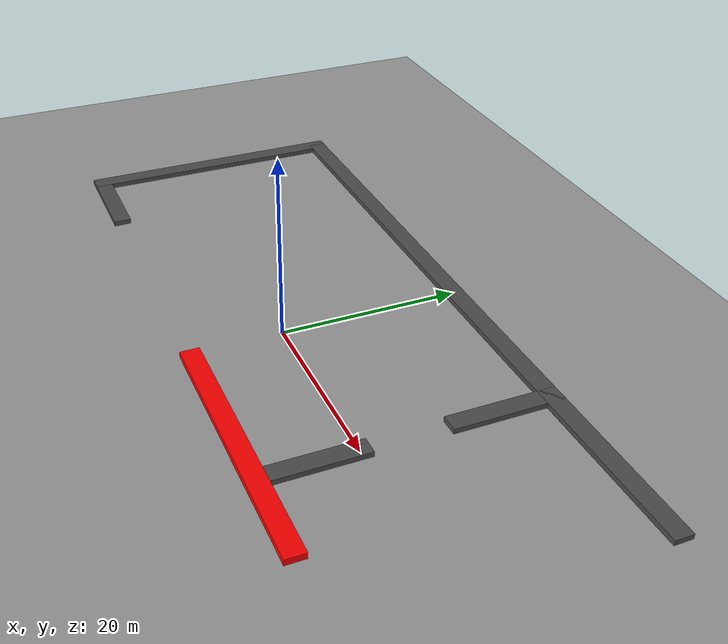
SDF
<sdf version="1.9">
 <world name="default">
  <physics type="ode">
   <max_step_size>0.01</max_step_size>
   <real_time_update_rate>60</real_time_update_rate>
  </physics>
  <model name="ground_plane">
   <static>true</static>
   <link name="link">
    <collision name="collision">
     <geometry><plane><normal>0 0 1</normal><size>100 100</size></plane></geometry>
     <surface><contact><collide_without_contact_bitmask>0x01</collide_without_contact_bitmask></contact></surface>
    </collision>
    <visual name="visual">
     <geometry><plane><normal>0 0 1</normal><size>100 100</size></plane></geometry>
     <material><ambient>0.6 0.6 0.6 1</ambient><diffuse>0.6 0.6 0.6 1</diffuse></material>
    </visual>
   </link>
  </model>
  <model name="gorge_north">
   <pose>0.0 20.0 0 0 0 0</pose>
   <link name="wall_link">
    <gravity>false</gravity>
    <visual name="visual">
     <geometry><box><size>80.0 2.0 1.0</size></box></geometry>
     <material><ambient>0.3 0.3 0.3 1</ambient></material>
    </visual>
   </link>
  </model>
  <model name="gorge_west">
   <pose>-40.0 5.0 0 0 0 0</pose>
   <link name="wall_link">
    <gravity>false</gravity>
    <visual name="visual">
     <geometry><box><size>2.0 32.0 1.0</size></box></geometry>
     <material><ambient>0.3 0.3 0.3 1</ambient></material>
    </visual>
   </link>
  </model>
  <model name="gorge_east_top">
   <pose>20.0 15.0 0 0 0 0</pose>
   <link name="wall_link">
    <gravity>false</gravity>
    <visual name="visual">
     <geometry><box><size>2.0 12.0 1.0</size></box></geometry>
     <material><ambient>0.3 0.3 0.3 1</ambient></material>
    </visual>
   </link>
  </model>
  <model name="gorge_east_bottom">
   <pose>20.0 -5.0 0 0 0 0</pose>
   <link name="wall_link">
    <gravity>false</gravity>
    <visual name="visual">
     <geometry><box><size>2.0 12.0 1.0</size></box></geometry>
     <material><ambient>0.3 0.3 0.3 1</ambient></material>
    </visual>
   </link>
  </model>
  <model name="gorge_south_east">
   <pose>10.0 -10.0 0 0 0 0</pose>
   <link name="wall_link">
    <gravity>false</gravity>
    <visual name="visual">
     <geometry><box><size>20.0 2.0 1.0</size></box></geometry>
     <material><ambient>0.3 0.3 0.3 1</ambient></material>
    </visual>
   </link>
  </model>
  <model name="gorge_south_west">
   <pose>-35.0 -10.0 0 0 0 0</pose>
   <link name="wall_link">
    <gravity>false</gravity>
    <visual name="visual">
     <geometry><box><size>12.0 2.0 1.0</size></box></geometry>
     <material><ambient>0.3 0.3 0.3 1</ambient></material>
    </visual>
   </link>
  </model>
  <model name="trap_door">
   <pose>15.0 -10.0 0 0 0 0</pose>
   <link name="moving_link">
    <gravity>false</gravity>
    <visual name="visual">
     <geometry><box><size>30.0 2.1 1.2</size></box></geometry>
     <material><ambient>1 0 0 1</ambient></material>
    </visual>
   </link>
   <motion>
    <link_name>moving_link</link_name>
    <direction>-1 0 0</direction>
    <amplitude>30.0</amplitude>
    <speed>6.0</speed>
    <turnaround_threshold>0.5</turnaround_threshold>
   </motion>
  </model>
 </world>
</sdf>
